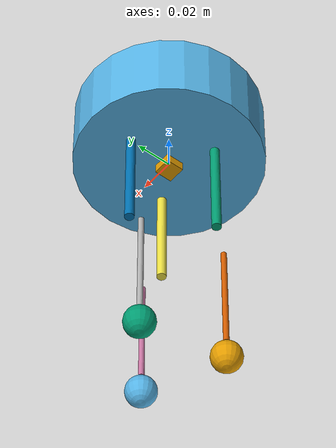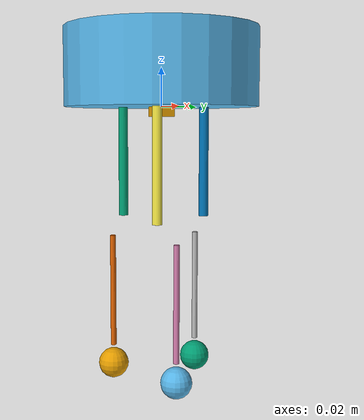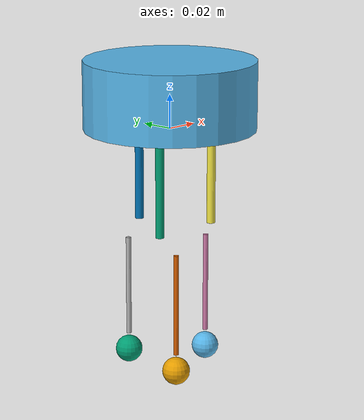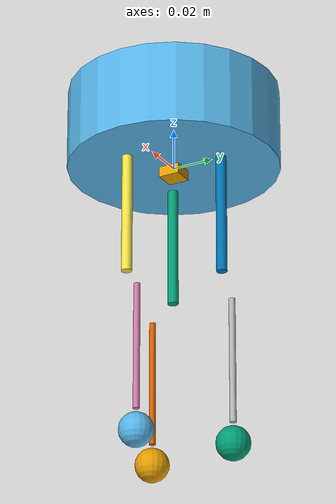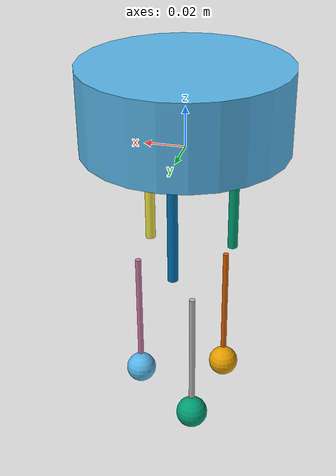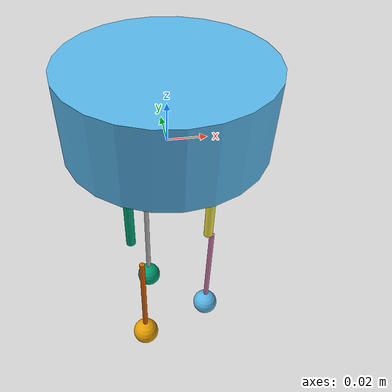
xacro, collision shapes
<?xml version="1.0"?>
<robot xmlns:xacro="http://www.ros.org/wiki/xacro" name="gurdy">

<!--You will also need the dimensions of the the basic geometry to have some idea of the way that everything is connected, and the collision elements geometry:-->
<!--For base_link there is no inertia needed because its a non-functional element-->

<!--base_link :         box size="0.01 0.01 0.01"                   mass=None, -->
<!--head_link :         cylinder radius="0.05"      length="0.04"   mass value="0.01"-->
<!--upperleg_links :   cylinder radius="0.0025"    length="0.06"   mass value="0.01"-->
<!--lowerleg_links :   cylinder radius="0.0015"    length="0.06"   mass value="0.01"-->
<!--foot_links :        sphere   radius="0.008"                     mass value="0.01"-->

<!--Friction is vital in the foot links. Try different values and see the effect on locomotion. These are some orientative values:-->
<!--kp = 1000.0-->
<!--kd = 1000.0-->
<!--mu1 = 10.0-->
<!--mu2 = 10.0-->

<!--PID are tricky. Use rqt_reconfigure to get correct values. These are some orientative values:-->

<!-- ################### XACRO Definitions ############################# -->
<!-- ################### XACRO Definitions ############################# -->
<!-- ################### XACRO Definitions ############################# -->
<!-- ################### XACRO Definitions ############################# -->
<!-- ################### XACRO Definitions ############################# -->

<!-- MUST ALWAYS GO BEFORE XACRO DEFINITIONS -->
<gazebo>
    <plugin name="gazebo_ros_control" filename="libgazebo_ros_control.so">
        <robotNamespace>/gurdy</robotNamespace>
    </plugin>
</gazebo>

<!-- You can perform the basic operations (+,-,*,/), the unary minus, and use parenthesis. This allows you to, for example, calculate the inertias based on the dimensions directly in the XACRO file. -->
<xacro:property name="m" value="0.01"/>
<xacro:property name="head_radius" value="0.05"/>
<xacro:property name="head_length" value="0.04"/>
<xacro:property name="head_z_origin" value="0.02"/>

<xacro:property name="head_ixx" value="${( (m/12.0) * (3*head_radius*head_radius + head_length*head_length) )}"/>
<!-- Another example would be symmetrically-positioned links or joints. -->
<xacro:property name="head_iyy" value="${head_ixx}"/>
<xacro:property name="head_izz" value="${( (m*head_radius*head_radius) / (2.0) )}"/>

<!-- MACROS
This is by far the most useful feature of XACROS. There are two main types of MACROS: -->
<!-- SIMPLE MACRO -->
<xacro:macro name="default_origin">
    <origin xyz="0 0 0" rpy="0 0 0"/>
</xacro:macro>
<xacro:macro name="visual_origin">
    <xacro:default_origin/>
</xacro:macro>

<!--######################## UPPER LEG XACROS ########################-->
<!--######################## UPPER LEG XACROS ########################-->
<!--######################## UPPER LEG XACROS ########################-->
<!--######################## UPPER LEG XACROS ########################-->
<xacro:property name="upperleg_radius" value="0.0025"/>
<xacro:property name="upperleg_length" value="0.06"/>
<xacro:macro name="upperleg_origin">
    <origin xyz="0 0 0.02" rpy="0 0 0"/> <!--UPPER-->
</xacro:macro>
<xacro:macro name="upperleg_link_inertia">
    <!-- ORIGINAL value taken from Inertial_calculator.py -->
    <!-- SOLUTION INERTIA ++++ WAY LESS TWITCHING -->
    <inertia ixx="3.015625e-05" ixy="0.0" ixz="0.0" iyy="3.015625e-05" iyz="0.0" izz="3.125e-07"/>
</xacro:macro>

<!-- PARAMETERISED MACRO -->
<xacro:macro name="generate_upperleg_link" params="num">
    <link name="upperlegM${num}_link"><!--UPPER-->
        <inertial>
            <xacro:upperleg_origin/>
            <mass value="${m}"/>
            <xacro:upperleg_link_inertia/>
        </inertial>
        <collision>
            <xacro:upperleg_origin/>
            <geometry>
                <cylinder radius="${upperleg_radius}" length="${upperleg_length}"/>
            </geometry>
        </collision>
        <visual>
            <xacro:visual_origin/>
            <geometry>
                <mesh filename="package://gurdy_description/models/gurdy/meshes/gurdy_higherleg_v2.dae"/>
            </geometry>
        </visual>
    </link>
</xacro:macro>

<!--######################## LOWER LEG XACROS ########################-->
<!--######################## LOWER LEG XACROS ########################-->
<!--######################## LOWER LEG XACROS ########################-->
<!--######################## LOWER LEG XACROS ########################-->
<xacro:property name="lowerleg_radius" value="0.0015"/>
<xacro:property name="lowerleg_length" value="0.06"/>
<xacro:macro name="lowerleg_origin">
    <origin xyz="0 0 0.03" rpy="0 0 0"/> <!--LOWER-->
</xacro:macro>
<xacro:macro name="lowerleg_link_inertia">
    <!-- ORIGINAL value taken from Inertial_calculator.py -->
    <!-- SOLUTION INERTIA ++++  -->
    <inertia ixx="3.005625e-05" ixy="0.0" ixz="0.0" iyy="3.005625e-05" iyz="0.0" izz="1.125e-07"/>
</xacro:macro>

<!-- PARAMETERISED MACRO -->
<xacro:macro name="generate_lowerleg_link" params="num">
    <link name="lowerlegM${num}_link"><!--UPPER-->
        <inertial>
            <xacro:lowerleg_origin/>
            <mass value="${m}"/>
            <xacro:lowerleg_link_inertia/>
        </inertial>
        <collision>
            <xacro:lowerleg_origin/>
            <geometry>
                <cylinder radius="${lowerleg_radius}" length="${lowerleg_length}"/>
            </geometry>
        </collision>
        <visual>
            <xacro:visual_origin/>
            <geometry>
                <mesh filename="package://gurdy_description/models/gurdy/meshes/gurdy_lowerleg_v2.dae"/>
            </geometry>
        </visual>
    </link>
</xacro:macro>

<!--######################## FOOT XACROS ########################-->
<!--######################## FOOT XACROS ########################-->
<!--######################## FOOT XACROS ########################-->
<!--######################## FOOT XACROS ########################-->
<xacro:property name="foot_radius" value="0.008"/>
<xacro:macro name="foot_origin">
    <origin xyz="0 0 0.01" rpy="0 0 0"/> <!--FOOT-->
</xacro:macro>
<xacro:macro name="foot_link_inertia">
    <!-- ORIGINAL value taken from Inertial_calculator.py -->
    <!-- SOLUTION INERTIA ++++  -->
    <inertia ixx="1.28e-06" ixy="0.0" ixz="0.0" iyy="1.28e-06" iyz="0.0" izz="1.28e-06"/>
</xacro:macro>

<!-- PARAMETERISED MACRO -->
<xacro:macro name="generate_foot_link" params="num">
    <link name="footM${num}_link"><!--UPPER-->
        <inertial>
            <xacro:foot_origin/>
            <mass value="${m}"/>
            <xacro:foot_link_inertia/>
        </inertial>
        <collision>
            <xacro:foot_origin/>
            <geometry>
                <sphere radius="${foot_radius}"/>
            </geometry>
        </collision>
        <visual>
            <xacro:visual_origin/>
            <geometry>
                <sphere radius="${foot_radius}"/>
            </geometry>
        </visual>
    </link>
</xacro:macro>

<!--######################## JOINT XACROS ########################-->
<!--######################## JOINT XACROS ########################-->
<!--######################## JOINT XACROS ########################-->
<!--######################## JOINT XACROS ########################-->

<xacro:macro name="upperleg_lowerleg_joint_origin">
    <origin xyz="0 0.0095 0.06" rpy="0 0 3.14159"/>
</xacro:macro>
<xacro:macro name="upperleg_lowerleg_joint_limit">
    <limit lower="-2.65" upper="0" effort="1.0" velocity="0.005"/>
</xacro:macro>
<xacro:macro name="generate_upperleg_lowerleg_joint" params="num">
    <joint name="upperlegM${num}_lowerlegM${num}_joint" type="revolute">
        <parent link="upperlegM${num}_link"/>
        <child link="lowerlegM${num}_link"/>
        <xacro:upperleg_lowerleg_joint_origin/>
        <xacro:upperleg_lowerleg_joint_limit/>
        <axis xyz="0 1 0"/>
    </joint>
</xacro:macro>

<xacro:macro name="lowerleg_foot_joint_origin">
    <origin xyz="0 0 0.06" rpy="0 0 0"/>
</xacro:macro>
<xacro:macro name="generate_lowerleg_foot_joint" params="num">
    <joint name="lowerlegM${num}_footM${num}_joint" type="fixed">
        <parent link="lowerlegM${num}_link"/>
        <child link="footM${num}_link"/>
        <xacro:lowerleg_foot_joint_origin/>
        <!--Rest NOT NEEDED for FIXED joint-->
    </joint>
</xacro:macro>

<!--######################## TRANSMISSION XACROS ########################-->
<!--######################## TRANSMISSION XACROS ########################-->
<!--######################## TRANSMISSION XACROS ########################-->
<!--######################## TRANSMISSION XACROS ########################-->

<xacro:macro name="generate_head_upperleg_transmission" params="num" >
    <transmission name="transmission_head_upperlegM${num}">
        <type>transmission_interface/SimpleTransmission</type>
        <joint name="head_upperlegM${num}_joint">
            <hardwareInterface>EffortJointInterface</hardwareInterface>
        </joint>
        <actuator name="motor_head_upperlegM${num}">
            <hardwareInterface>EffortJointInterface</hardwareInterface>
            <mechanicalReduction>1</mechanicalReduction>
        </actuator>
    </transmission>
</xacro:macro>

<xacro:macro name="generate_upperleg_lowerleg_transmission" params="num" >
    <transmission name="transmission_upperlegM${num}_lowerlegM${num}">
        <type>transmission_interface/SimpleTransmission</type>
        <joint name="upperlegM${num}_lowerlegM${num}_joint">
            <hardwareInterface>EffortJointInterface</hardwareInterface>
        </joint>
        <actuator name="motor_upperlegM${num}_lowerlegM${num}">
            <hardwareInterface>EffortJointInterface</hardwareInterface>
            <mechanicalReduction>1</mechanicalReduction>
        </actuator>
    </transmission>
</xacro:macro>

<!--######################## GAZEBO REFERENCE XACROS ########################-->
<!--######################## GAZEBO REFERENCE XACROS ########################-->
<!--######################## GAZEBO REFERENCE XACROS ########################-->
<!--######################## GAZEBO REFERENCE XACROS ########################-->

<xacro:macro name="generate_foot_gazebo_reference" params="num color=White">
    <!-- If 'color' param is unspecified, it defaults to White -->
        <gazebo reference="footM${num}_link">
        <kp>1000.0</kp>
        <kd>1000.0</kd>
        <mu1>10.0</mu1>
        <mu2>10.0</mu2>
        <xacro:if value="${color == ''}">
            <material>Gazebo/White</material>
        </xacro:if>
        <xacro:if value="${color != ''}">
            <material>Gazebo/${color}</material>
        </xacro:if>

        </gazebo>
</xacro:macro>

<!-- ################### LINK Definitions ############################# -->
<!-- ################### LINK Definitions ############################# -->
<!-- ################### LINK Definitions ############################# -->
<!-- ################### LINK Definitions ############################# -->
<!-- ################### LINK Definitions ############################# -->

    <link name="base_link">
        <collision>
            <xacro:default_origin/>
            <geometry>
                <box size="0.01 0.01 0.01"/>
            </geometry>
        </collision>
        <visual>
            <xacro:visual_origin/>
            <geometry>
                <box size="0.01 0.01 0.01"/>
            </geometry>
        </visual>
    </link>

            <link name="head_link">
                <inertial>
                    <origin xyz="0 0 ${head_z_origin}" rpy="0 0 0"/>
                    <mass value="${m}"/>
                    <inertia ixx="${head_ixx}" ixy="0.0" ixz="0.0" iyy="${head_iyy}" iyz="0.0" izz="${head_izz}"/>
                </inertial>
                <collision>
                    <origin xyz="0 0 ${head_z_origin}" rpy="0 0 0"/>
                    <geometry>
                        <cylinder radius="${head_radius}" length="${head_length}"/>
                    </geometry>
                </collision>
                <visual>
                    <xacro:visual_origin/>
                    <geometry>
                        <mesh filename="package://gurdy_description/models/gurdy/meshes/gurdy_head_v2.dae"/>
                    </geometry>
                </visual>
            </link>

                    <xacro:generate_upperleg_link num="1" />
                    <xacro:generate_upperleg_link num="2" />
                    <xacro:generate_upperleg_link num="3" />

                            <xacro:generate_lowerleg_link num="1" />
                            <xacro:generate_lowerleg_link num="2" />
                            <xacro:generate_lowerleg_link num="3" />

                                    <xacro:generate_foot_link num="1" />
                                    <xacro:generate_foot_link num="2" />
                                    <xacro:generate_foot_link num="3" />

<!-- ################### JOINT Definitions ############################# -->
<!-- ################### JOINT Definitions ############################# -->
<!-- ################### JOINT Definitions ############################# -->
<!-- ################### JOINT Definitions ############################# -->
<!-- ################### JOINT Definitions ############################# -->

    <joint name="base_head_joint" type="fixed">
        <parent link="base_link"/>
        <child link="head_link"/>
        <!--Rest NOT NEEDED for FIXED joint-->
    </joint>

            <joint name="head_upperlegM1_joint" type="revolute">
                <parent link="head_link"/>
                <child link="upperlegM1_link"/>
                <!--this is the Pitch value from the urdf to graphiz map pdf-->
                <!--This Pitch value is from solution-->
                <!--Haven't seen a difference-->
                <origin xyz="-0.02165 -0.0125 -0.008" rpy="3.14159 0 0.523599"/>
                <!--Rest NOT NEEDED for FIXED joint-->
                <limit lower="-1.57" upper="0.0" effort="1.0" velocity="0.005"/>
                <axis xyz="0 1 0"/>
            </joint>

            <joint name="head_upperlegM2_joint" type="revolute">
                <parent link="head_link"/>
                <child link="upperlegM2_link"/>
                <origin xyz="0.02165 -0.0125 -0.008" rpy="3.14159 0 2.61799"/>
                <!--Rest NOT NEEDED for FIXED joint-->
                <limit lower="-1.57" upper="0.0" effort="1.0" velocity="0.005"/>
                <axis xyz="0 1 0"/>
            </joint>

            <joint name="head_upperlegM3_joint" type="revolute">
                <parent link="head_link"/>
                <child link="upperlegM3_link"/>
                <origin xyz="0 0.025 -0.008" rpy="3.14159 0 -1.5708"/>
                <!--Rest NOT NEEDED for FIXED joint-->
                <limit lower="-1.57" upper="0.0" effort="1.0" velocity="0.005"/>
                <axis xyz="0 1 0"/>
            </joint>

                    <xacro:generate_upperleg_lowerleg_joint num="1"/>
                    <xacro:generate_upperleg_lowerleg_joint num="2"/>
                    <xacro:generate_upperleg_lowerleg_joint num="3"/>

                            <xacro:generate_lowerleg_foot_joint num="1"/>
                            <xacro:generate_lowerleg_foot_joint num="2"/>
                            <xacro:generate_lowerleg_foot_joint num="3"/>

<!-- ################### TRANSMISSION Definitions ############################# -->
<!-- ################### TRANSMISSION Definitions ############################# -->
<!-- ################### TRANSMISSION Definitions ############################# -->
<!-- ################### TRANSMISSION Definitions ############################# -->
<!-- ################### TRANSMISSION Definitions ############################# -->

            <xacro:generate_head_upperleg_transmission num="1"/>
            <xacro:generate_head_upperleg_transmission num="2"/>
            <xacro:generate_head_upperleg_transmission num="3"/>

                <xacro:generate_upperleg_lowerleg_transmission num="1"/>
                <xacro:generate_upperleg_lowerleg_transmission num="2"/>
                <xacro:generate_upperleg_lowerleg_transmission num="3"/>

<!-- ################### MATERIALS Definitions ############################# -->
<!-- ################### MATERIALS Definitions ############################# -->
<!-- ################### MATERIALS Definitions ############################# -->
<!-- ################### MATERIALS Definitions ############################# -->
<!-- ################### MATERIALS Definitions ############################# -->

        <gazebo reference="head_link">
            <mu1>10.0</mu1>
            <mu2>10.0</mu2>
        </gazebo>

        <xacro:generate_foot_gazebo_reference num="1" color=""/>
        <xacro:generate_foot_gazebo_reference num="2" />
        <xacro:generate_foot_gazebo_reference num="3" color="White"/>
        <xacro:generate_foot_gazebo_reference num="3" color="Blue"/>

<!-- ################### SENSOR Definitions ############################# -->
<!-- ################### SENSOR Definitions ############################# -->
<!-- ################### SENSOR Definitions ############################# -->
<!-- ################### SENSOR Definitions ############################# -->
<!-- ################### SENSOR Definitions ############################# -->

    <gazebo>
        <plugin name="gazebo_ros_imu_controller" filename="libgazebo_ros_imu.so">
            <robotNamespace>/gurdy</robotNamespace>
            <topicName>imu/data</topicName>
            <serviceName>imu/service</serviceName>
            <bodyName>base_link</bodyName>
            <gaussianNoise>0</gaussianNoise>
            <rpyOffsets>0 0 0</rpyOffsets>
            <updateRate>10.0</updateRate>
            <alwaysOn>true</alwaysOn>
            <gaussianNoise>0</gaussianNoise>
        </plugin>
    </gazebo>

</robot>
